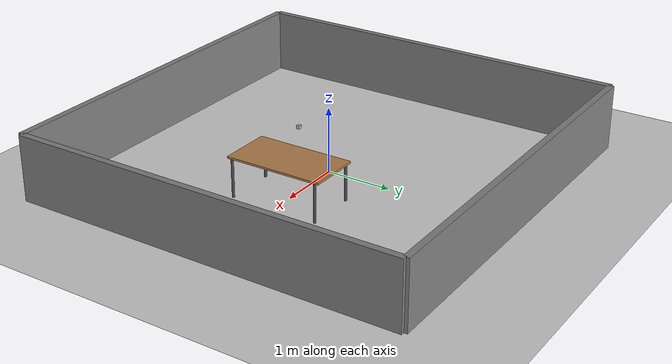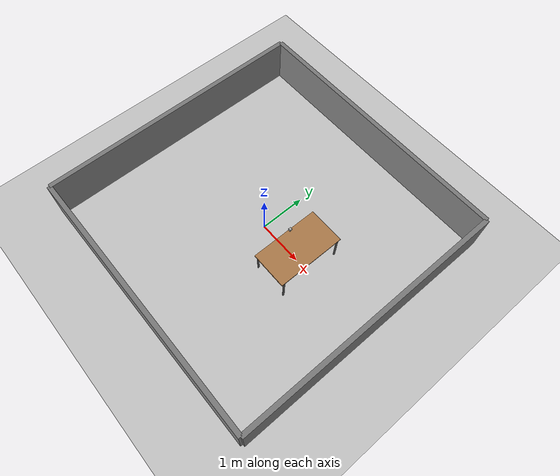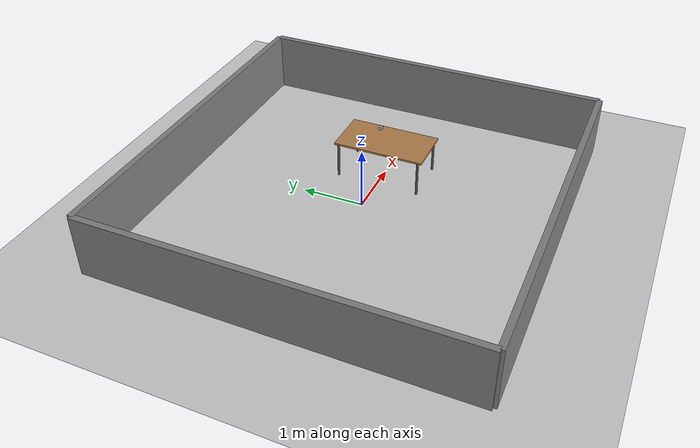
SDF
<?xml version='1.0' encoding='utf-8'?>
<sdf version="1.9">
  <world name="mini_world">
    <physics name="1ms" type="dart">
      <max_step_size>0.001</max_step_size>
      <real_time_factor>1</real_time_factor>
      <real_time_update_rate>1000</real_time_update_rate>
    </physics>
    <plugin name="gz::sim::systems::Physics" filename="gz-sim-physics-system" />
    <plugin name="gz::sim::systems::UserCommands" filename="gz-sim-user-commands-system" />
    <plugin name="gz::sim::systems::SceneBroadcaster" filename="gz-sim-scene-broadcaster-system" />
    <plugin name="gz::sim::systems::Contact" filename="gz-sim-contact-system" />
    <plugin name="gz::sim::systems::Sensors" filename="gz-sim-sensors-system">
      <render_engine>ogre2</render_engine>
    </plugin>
    <gravity>0 0 -9.8</gravity>
    <magnetic_field>6e-06 2.3e-05 -4.2e-05</magnetic_field>
    <atmosphere type="adiabatic" />
    <scene>
      <ambient>0.4 0.4 0.4 1</ambient>
      <background>0.7 0.7 0.7 1</background>
      <shadows>true</shadows>
    </scene>
    <model name="ground_plane">
      <static>true</static>
      <link name="link">
        <collision name="collision">
          <geometry>
            <plane>
              <normal>0 0 1</normal>
              <size>100 100</size>
            </plane>
          </geometry>
          <surface>
            <friction>
              <ode />
            </friction>
            <bounce />
            <contact />
          </surface>
        </collision>
        <visual name="visual">
          <geometry>
            <plane>
              <normal>0 0 1</normal>
              <size>100 100</size>
            </plane>
          </geometry>
          <material>
            <ambient>0.8 0.8 0.8 1</ambient>
            <diffuse>0.8 0.8 0.8 1</diffuse>
            <specular>0.8 0.8 0.8 1</specular>
          </material>
        </visual>
        <pose>0 0 0 0 -0 0</pose>
        <inertial>
          <pose>0 0 0 0 -0 0</pose>
          <mass>1</mass>
          <inertia>
            <ixx>1</ixx>
            <ixy>0</ixy>
            <ixz>0</ixz>
            <iyy>1</iyy>
            <iyz>0</iyz>
            <izz>1</izz>
          </inertia>
        </inertial>
        <enable_wind>false</enable_wind>
      </link>
      <pose>0 0 0 0 -0 0</pose>
      <self_collide>false</self_collide>
    </model>
    <light name="sun" type="directional">
      <pose>0 0 10 0 -0 0</pose>
      <cast_shadows>true</cast_shadows>
      <intensity>1</intensity>
      <direction>-0.5 0.1 -0.9</direction>
      <diffuse>0.8 0.8 0.8 1</diffuse>
      <specular>0.2 0.2 0.2 1</specular>
      <attenuation>
        <range>1000</range>
        <linear>0.01</linear>
        <constant>0.90000000000000002</constant>
        <quadratic>0.001</quadratic>
      </attenuation>
      <spot>
        <inner_angle>0</inner_angle>
        <outer_angle>0</outer_angle>
        <falloff>0</falloff>
      </spot>
    </light>
    <!-- North wall -->
    <model name="wall_north">
      <static>true</static>
      <pose>0 3 0.5 0 0 0</pose>
      <link name="link">
        <collision name="collision">
          <geometry>
            <box>
              <size>6 0.1 1</size>
            </box>
          </geometry>
        </collision>
        <visual name="visual">
          <geometry>
            <box>
              <size>6 0.1 1</size>
            </box>
          </geometry>
          <material>
            <diffuse>0.5 0.5 0.5 1</diffuse>
          </material>
        </visual>
      </link>
    </model>

    <!-- South wall -->
    <model name="wall_south">
      <static>true</static>
      <pose>0 -3 0.5 0 0 0</pose>
      <link name="link">
        <collision name="collision">
          <geometry>
            <box>
              <size>6 0.1 1</size>
            </box>
          </geometry>
        </collision>
        <visual name="visual">
          <geometry>
            <box>
              <size>6 0.1 1</size>
            </box>
          </geometry>
          <material>
            <diffuse>0.5 0.5 0.5 1</diffuse>
          </material>
        </visual>
      </link>
    </model>

    <!-- East wall -->
    <model name="wall_east">
      <static>true</static>
      <pose>3 0 0.5 0 0 1.570796</pose>
      <link name="link">
        <collision name="collision">
          <geometry>
            <box>
              <size>6 0.1 1</size>
            </box>
          </geometry>
        </collision>
        <visual name="visual">
          <geometry>
            <box>
              <size>6 0.1 1</size>
            </box>
          </geometry>
          <material>
            <diffuse>0.5 0.5 0.5 1</diffuse>
          </material>
        </visual>
      </link>
    </model>

    <!-- West wall -->
    <model name="wall_west">
      <static>true</static>
      <pose>-3 0 0.5 0 0 1.570796</pose>
      <link name="link">
        <collision name="collision">
          <geometry>
            <box>
              <size>6 0.1 1</size>
            </box>
          </geometry>
        </collision>
        <visual name="visual">
          <geometry>
            <box>
              <size>6 0.1 1</size>
            </box>
          </geometry>
          <material>
            <diffuse>0.5 0.5 0.5 1</diffuse>
          </material>
        </visual>
      </link>
    </model>
    <!-- table Model  -->
    <model name='table0'>
      <include>
        <uri>model://table</uri>
        <pose>1 0 0.0 0.0 0.0 -1.5707963267948966</pose>
      </include>
    </model>
    <model name='Box1'>
      <include>
        <uri>model://Box1</uri>
        <pose>0.75 0.0 1.0 0.0 0.0 0.0</pose>
      </include>
    </model>

  </world>
</sdf>

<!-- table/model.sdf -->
<sdf version="1.5">
  <model name="table">
    <static>true</static>
    <link name="link">
      <collision name="surface">
        <pose>0 0 0.60 0 0 0</pose>
        <geometry>
          <box>
            <size>1.5 0.8 0.03</size>
          </box>
        </geometry>
        <surface>
          <friction>
            <ode>
              <mu>0.6</mu>
              <mu2>0.6</mu2>
            </ode>
          </friction>
        </surface>
      </collision>
      <visual name="visual1">
        <pose>0 0 0.60 0 0 0</pose>
        <geometry>
          <box>
            <size>1.5 0.8 0.03</size>
          </box>
        </geometry>
        <material>
          <ambient>0.6 0.4 0.2 1</ambient>
          <diffuse>0.7 0.5 0.3 1</diffuse>
          <specular>0.1 0.1 0.05 1</specular>
          <!-- PBR for Ignition, material scripts for gazebo classic-->
          <pbr>
            <metal>
              <albedo_map>Table_Diffuse.jpg</albedo_map>
            </metal>
          </pbr>
        </material>
      </visual>
      <collision name="front_left_leg">
        <pose>0.68 0.38 0.30 0 0 0</pose>
        <geometry>
          <cylinder>
            <radius>0.02</radius>
            <length>0.60</length>
          </cylinder>
        </geometry>
      </collision>
      <visual name="front_left_leg">
        <pose>0.68 0.38 0.30 0 0 0</pose>
        <geometry>
          <cylinder>
            <radius>0.02</radius>
            <length>0.60</length>
          </cylinder>
        </geometry>
        <material>
          <ambient>0.2 0.2 0.2 1</ambient>
          <diffuse>0.3 0.3 0.3 1</diffuse>
          <specular>0.1 0.1 0.1 1</specular>
        </material>
      </visual>
      <collision name="front_right_leg">
        <pose>0.68 -0.38 0.30 0 0 0</pose>
        <geometry>
          <cylinder>
            <radius>0.02</radius>
            <length>0.60</length>
          </cylinder>
        </geometry>
      </collision>
      <visual name="front_right_leg">
        <pose>0.68 -0.38 0.30 0 0 0</pose>
        <geometry>
          <cylinder>
            <radius>0.02</radius>
            <length>0.60</length>
          </cylinder>
        </geometry>
        <material>
          <ambient>0.2 0.2 0.2 1</ambient>
          <diffuse>0.3 0.3 0.3 1</diffuse>
          <specular>0.1 0.1 0.1 1</specular>
        </material>
      </visual>
      <collision name="back_right_leg">
        <pose>-0.68 -0.38 0.30 0 0 0</pose>
        <geometry>
          <cylinder>
            <radius>0.02</radius>
            <length>0.60</length>
          </cylinder>
        </geometry>
      </collision>
      <visual name="back_right_leg">
        <pose>-0.68 -0.38 0.30 0 0 0</pose>
        <geometry>
          <cylinder>
            <radius>0.02</radius>
            <length>0.60</length>
          </cylinder>
        </geometry>
        <material>
          <ambient>0.2 0.2 0.2 1</ambient>
          <diffuse>0.3 0.3 0.3 1</diffuse>
          <specular>0.1 0.1 0.1 1</specular>
        </material>
      </visual>
      <collision name="back_left_leg">
        <pose>-0.68 0.38 0.30 0 0 0</pose>
        <geometry>
          <cylinder>
            <radius>0.02</radius>
            <length>0.60</length>
          </cylinder>
        </geometry>
      </collision>
      <visual name="back_left_leg">
        <pose>-0.68 0.38 0.30 0 0 0</pose>
        <geometry>
          <cylinder>
            <radius>0.02</radius>
            <length>0.60</length>
          </cylinder>
        </geometry>
        <material>
          <ambient>0.2 0.2 0.2 1</ambient>
          <diffuse>0.3 0.3 0.3 1</diffuse>
          <specular>0.1 0.1 0.1 1</specular>
        </material>
      </visual>
    </link>
  </model>
</sdf>

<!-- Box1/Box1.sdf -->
<sdf version="1.6">

<model name="Box1">

  <static>false</static>

    <link name="Aruco_box">

    <!-- Box -->
      <visual name="Box">
        <pose>0.0 0 0 0 0 0</pose>
        <geometry>
          <box>
            <size>0.05 0.05 0.05</size>
          </box>
        </geometry>
        <material>
          <ambient>0.7 0.7 0.7 1</ambient>
          <diffuse>0.7 0.7 0.7 1</diffuse>
          <specular>0.1 0.1 0.1 1</specular>
        </material>
      </visual>

      <collision name="Box_collision">
        <pose>0.0 0 0 0 0 0</pose>
        <geometry>
          <box>
            <size>0.05 0.05 0.05</size>
          </box>
        </geometry>

  <surface>
    <friction>
      <ode>
        <mu>5.0</mu>
        <mu2>5.0</mu2>
      </ode>
    </friction>
  </surface>

      </collision>

      <!-- Top aruco face -->
     <visual name="Top">
        <pose>-0.025 0 0.025 0 1.57 0</pose>
        <geometry>
          <mesh>
            <uri>meshes/Box1.dae</uri>
            <scale>0.1 0.1 0.1</scale>
          </mesh>
        </geometry>
      </visual>

  <inertial>
    <mass value="0.5"/>
    <inertia ixx="0.001633333" ixy="0.0" ixz="0.0" iyy="0.001633333" iyz="0.0" izz="0.001633333"/>
  </inertial>

  </link>
  </model>

</sdf>
